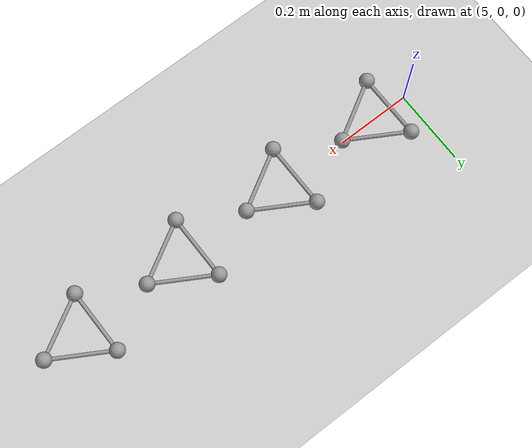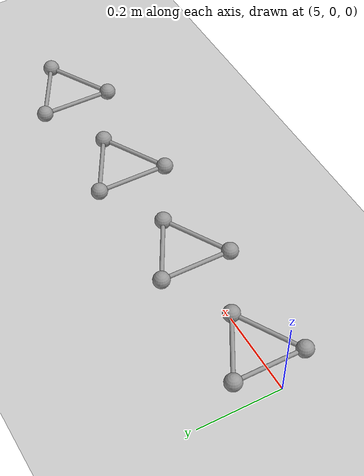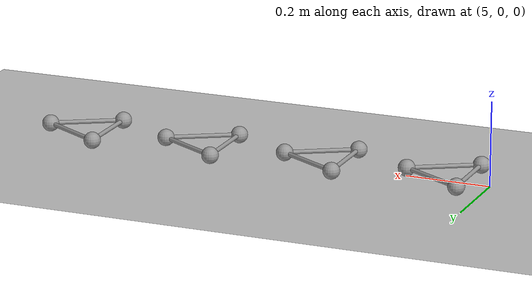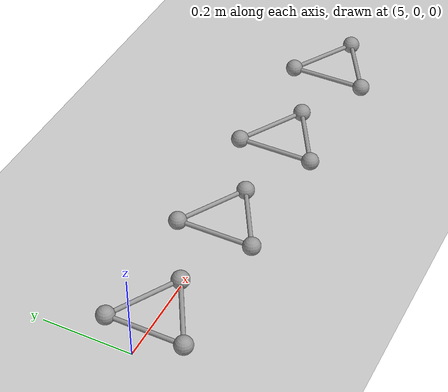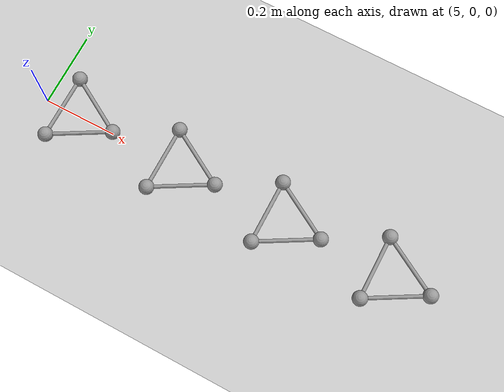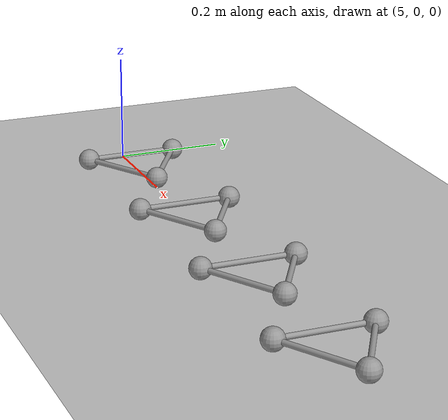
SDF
<sdf version="1.6">
 <world name="default">
  <include><uri>model://ground_plane</uri></include>
  <include><uri>model://sun</uri></include>
  <model name="triball_17">
   <pose>5.1 0 0 0 0 0</pose>
   <link name="link">
    <pose>0 0 0.02 0 0 0</pose>
    <inertial>
     <mass>0.060318578948924034</mass>
     <inertia>
      <ixx>0.000311243867376448</ixx>
      <iyy>0.000311243867376448</iyy>
      <izz>0.0006128367621210681</izz>
      <ixy>0.0</ixy>
      <ixz>0.0</ixz>
      <iyz>0.0</iyz>
     </inertia>
    </inertial>
    <sensor name="imu" type="imu"><always_on>true</always_on></sensor>
    <collision name="collision_a">
     <pose>0.09999999999999999 0 0  0 0 0</pose>
     <geometry><sphere><radius>0.02</radius></sphere></geometry>
     <surface><friction><ode><mu>0.9</mu><mu2>0.9</mu2><fdir1>1 0 0</fdir1></ode></friction></surface>
    </collision>
    <visual name="visual_a">
     <pose>0.09999999999999999 0 0  0 0 0</pose>
     <geometry><sphere><radius>0.02</radius></sphere></geometry>
     <material>
      <script><uri>file://media/materials/scripts/gazebo.material</uri><name>Gazebo/Grey</name></script>
     </material>
    </visual>
    <collision name="collision_a_to_b">
     <pose>0.024999999999999998 0.04330127018922193 0.0  -1.5707962969925737 -1.0471975511965974 1.047197525387029</pose>
     <geometry><cylinder><radius>0.005</radius><length>0.17320508075688773</length></cylinder></geometry>
     <surface><friction><ode><mu>0.9</mu><mu2>0.9</mu2></ode></friction></surface>
    </collision>
    <visual name="visual_a_to_b">
     <pose>0.024999999999999998 0.04330127018922193 0.0  -1.5707962969925737 -1.0471975511965974 1.047197525387029</pose>
     <geometry><cylinder><radius>0.005</radius><length>0.17320508075688773</length></cylinder></geometry>
     <material>
      <script><uri>file://media/materials/scripts/gazebo.material</uri><name>Gazebo/Grey</name></script>
     </material>
    </visual>
    <collision name="collision_a_to_c">
     <pose>0.024999999999999998 -0.04330127018922193 0.0  1.5707962969925737 -1.0471975511965974 -1.047197525387029</pose>
     <geometry><cylinder><radius>0.005</radius><length>0.17320508075688773</length></cylinder></geometry>
     <surface><friction><ode><mu>0.9</mu><mu2>0.9</mu2></ode></friction></surface>
    </collision>
    <visual name="visual_a_to_c">
     <pose>0.024999999999999998 -0.04330127018922193 0.0  1.5707962969925737 -1.0471975511965974 -1.047197525387029</pose>
     <geometry><cylinder><radius>0.005</radius><length>0.17320508075688773</length></cylinder></geometry>
     <material>
      <script><uri>file://media/materials/scripts/gazebo.material</uri><name>Gazebo/Grey</name></script>
     </material>
    </visual>
    <collision name="collision_b">
     <pose>-0.049999999999999996 0.08660254037844387 0  0 0 0</pose>
     <geometry><sphere><radius>0.02</radius></sphere></geometry>
     <surface><friction><ode><mu>0.9</mu><mu2>0.9</mu2><fdir1>1 0 0</fdir1></ode></friction></surface>
    </collision>
    <visual name="visual_b">
     <pose>-0.049999999999999996 0.08660254037844387 0  0 0 0</pose>
     <geometry><sphere><radius>0.02</radius></sphere></geometry>
     <material>
      <script><uri>file://media/materials/scripts/gazebo.material</uri><name>Gazebo/Grey</name></script>
     </material>
    </visual>
    <collision name="collision_b_to_c">
     <pose>-0.049999999999999996 0.0 0.0  1.5707963267948963 -0.0 0.0</pose>
     <geometry><cylinder><radius>0.005</radius><length>0.17320508075688773</length></cylinder></geometry>
     <surface><friction><ode><mu>0.9</mu><mu2>0.9</mu2></ode></friction></surface>
    </collision>
    <visual name="visual_b_to_c">
     <pose>-0.049999999999999996 0.0 0.0  1.5707963267948963 -0.0 0.0</pose>
     <geometry><cylinder><radius>0.005</radius><length>0.17320508075688773</length></cylinder></geometry>
     <material>
      <script><uri>file://media/materials/scripts/gazebo.material</uri><name>Gazebo/Grey</name></script>
     </material>
    </visual>
    <collision name="collision_c">
     <pose>-0.049999999999999996 -0.08660254037844387 0  0 0 0</pose>
     <geometry><sphere><radius>0.02</radius></sphere></geometry>
     <surface><friction><ode><mu>0.9</mu><mu2>0.9</mu2><fdir1>1 0 0</fdir1></ode></friction></surface>
    </collision>
    <visual name="visual_c">
     <pose>-0.049999999999999996 -0.08660254037844387 0  0 0 0</pose>
     <geometry><sphere><radius>0.02</radius></sphere></geometry>
     <material>
      <script><uri>file://media/materials/scripts/gazebo.material</uri><name>Gazebo/Grey</name></script>
     </material>
    </visual>
   </link>
   <plugin name="triball_17" filename="libInitialVelocityPlugin.so">
    <linear>0 15 0</linear>
    <angular>0 0 9.375</angular>
   </plugin>
  </model>
  <model name="triball_18">
   <pose>5.3999999999999995 0 0 0 0 0</pose>
   <link name="link">
    <pose>0 0 0.02 0 0 0</pose>
    <inertial>
     <mass>0.060318578948924034</mass>
     <inertia>
      <ixx>0.000311243867376448</ixx>
      <iyy>0.000311243867376448</iyy>
      <izz>0.0006128367621210681</izz>
      <ixy>0.0</ixy>
      <ixz>0.0</ixz>
      <iyz>0.0</iyz>
     </inertia>
    </inertial>
    <sensor name="imu" type="imu"><always_on>true</always_on></sensor>
    <collision name="collision_a">
     <pose>0.09999999999999999 0 0  0 0 0</pose>
     <geometry><sphere><radius>0.02</radius></sphere></geometry>
     <surface><friction><ode><mu>0.9</mu><mu2>0.9</mu2><fdir1>1 0 0</fdir1></ode></friction></surface>
    </collision>
    <visual name="visual_a">
     <pose>0.09999999999999999 0 0  0 0 0</pose>
     <geometry><sphere><radius>0.02</radius></sphere></geometry>
     <material>
      <script><uri>file://media/materials/scripts/gazebo.material</uri><name>Gazebo/Grey</name></script>
     </material>
    </visual>
    <collision name="collision_a_to_b">
     <pose>0.024999999999999998 0.04330127018922193 0.0  -1.5707962969925737 -1.0471975511965974 1.047197525387029</pose>
     <geometry><cylinder><radius>0.005</radius><length>0.17320508075688773</length></cylinder></geometry>
     <surface><friction><ode><mu>0.9</mu><mu2>0.9</mu2></ode></friction></surface>
    </collision>
    <visual name="visual_a_to_b">
     <pose>0.024999999999999998 0.04330127018922193 0.0  -1.5707962969925737 -1.0471975511965974 1.047197525387029</pose>
     <geometry><cylinder><radius>0.005</radius><length>0.17320508075688773</length></cylinder></geometry>
     <material>
      <script><uri>file://media/materials/scripts/gazebo.material</uri><name>Gazebo/Grey</name></script>
     </material>
    </visual>
    <collision name="collision_a_to_c">
     <pose>0.024999999999999998 -0.04330127018922193 0.0  1.5707962969925737 -1.0471975511965974 -1.047197525387029</pose>
     <geometry><cylinder><radius>0.005</radius><length>0.17320508075688773</length></cylinder></geometry>
     <surface><friction><ode><mu>0.9</mu><mu2>0.9</mu2></ode></friction></surface>
    </collision>
    <visual name="visual_a_to_c">
     <pose>0.024999999999999998 -0.04330127018922193 0.0  1.5707962969925737 -1.0471975511965974 -1.047197525387029</pose>
     <geometry><cylinder><radius>0.005</radius><length>0.17320508075688773</length></cylinder></geometry>
     <material>
      <script><uri>file://media/materials/scripts/gazebo.material</uri><name>Gazebo/Grey</name></script>
     </material>
    </visual>
    <collision name="collision_b">
     <pose>-0.049999999999999996 0.08660254037844387 0  0 0 0</pose>
     <geometry><sphere><radius>0.02</radius></sphere></geometry>
     <surface><friction><ode><mu>0.9</mu><mu2>0.9</mu2><fdir1>1 0 0</fdir1></ode></friction></surface>
    </collision>
    <visual name="visual_b">
     <pose>-0.049999999999999996 0.08660254037844387 0  0 0 0</pose>
     <geometry><sphere><radius>0.02</radius></sphere></geometry>
     <material>
      <script><uri>file://media/materials/scripts/gazebo.material</uri><name>Gazebo/Grey</name></script>
     </material>
    </visual>
    <collision name="collision_b_to_c">
     <pose>-0.049999999999999996 0.0 0.0  1.5707963267948963 -0.0 0.0</pose>
     <geometry><cylinder><radius>0.005</radius><length>0.17320508075688773</length></cylinder></geometry>
     <surface><friction><ode><mu>0.9</mu><mu2>0.9</mu2></ode></friction></surface>
    </collision>
    <visual name="visual_b_to_c">
     <pose>-0.049999999999999996 0.0 0.0  1.5707963267948963 -0.0 0.0</pose>
     <geometry><cylinder><radius>0.005</radius><length>0.17320508075688773</length></cylinder></geometry>
     <material>
      <script><uri>file://media/materials/scripts/gazebo.material</uri><name>Gazebo/Grey</name></script>
     </material>
    </visual>
    <collision name="collision_c">
     <pose>-0.049999999999999996 -0.08660254037844387 0  0 0 0</pose>
     <geometry><sphere><radius>0.02</radius></sphere></geometry>
     <surface><friction><ode><mu>0.9</mu><mu2>0.9</mu2><fdir1>1 0 0</fdir1></ode></friction></surface>
    </collision>
    <visual name="visual_c">
     <pose>-0.049999999999999996 -0.08660254037844387 0  0 0 0</pose>
     <geometry><sphere><radius>0.02</radius></sphere></geometry>
     <material>
      <script><uri>file://media/materials/scripts/gazebo.material</uri><name>Gazebo/Grey</name></script>
     </material>
    </visual>
   </link>
   <plugin name="triball_18" filename="libInitialVelocityPlugin.so">
    <linear>0 15 0</linear>
    <angular>0 0 18.75</angular>
   </plugin>
  </model>
  <model name="triball_19">
   <pose>5.7 0 0 0 0 0</pose>
   <link name="link">
    <pose>0 0 0.02 0 0 0</pose>
    <inertial>
     <mass>0.060318578948924034</mass>
     <inertia>
      <ixx>0.000311243867376448</ixx>
      <iyy>0.000311243867376448</iyy>
      <izz>0.0006128367621210681</izz>
      <ixy>0.0</ixy>
      <ixz>0.0</ixz>
      <iyz>0.0</iyz>
     </inertia>
    </inertial>
    <sensor name="imu" type="imu"><always_on>true</always_on></sensor>
    <collision name="collision_a">
     <pose>0.09999999999999999 0 0  0 0 0</pose>
     <geometry><sphere><radius>0.02</radius></sphere></geometry>
     <surface><friction><ode><mu>0.9</mu><mu2>0.9</mu2><fdir1>1 0 0</fdir1></ode></friction></surface>
    </collision>
    <visual name="visual_a">
     <pose>0.09999999999999999 0 0  0 0 0</pose>
     <geometry><sphere><radius>0.02</radius></sphere></geometry>
     <material>
      <script><uri>file://media/materials/scripts/gazebo.material</uri><name>Gazebo/Grey</name></script>
     </material>
    </visual>
    <collision name="collision_a_to_b">
     <pose>0.024999999999999998 0.04330127018922193 0.0  -1.5707962969925737 -1.0471975511965974 1.047197525387029</pose>
     <geometry><cylinder><radius>0.005</radius><length>0.17320508075688773</length></cylinder></geometry>
     <surface><friction><ode><mu>0.9</mu><mu2>0.9</mu2></ode></friction></surface>
    </collision>
    <visual name="visual_a_to_b">
     <pose>0.024999999999999998 0.04330127018922193 0.0  -1.5707962969925737 -1.0471975511965974 1.047197525387029</pose>
     <geometry><cylinder><radius>0.005</radius><length>0.17320508075688773</length></cylinder></geometry>
     <material>
      <script><uri>file://media/materials/scripts/gazebo.material</uri><name>Gazebo/Grey</name></script>
     </material>
    </visual>
    <collision name="collision_a_to_c">
     <pose>0.024999999999999998 -0.04330127018922193 0.0  1.5707962969925737 -1.0471975511965974 -1.047197525387029</pose>
     <geometry><cylinder><radius>0.005</radius><length>0.17320508075688773</length></cylinder></geometry>
     <surface><friction><ode><mu>0.9</mu><mu2>0.9</mu2></ode></friction></surface>
    </collision>
    <visual name="visual_a_to_c">
     <pose>0.024999999999999998 -0.04330127018922193 0.0  1.5707962969925737 -1.0471975511965974 -1.047197525387029</pose>
     <geometry><cylinder><radius>0.005</radius><length>0.17320508075688773</length></cylinder></geometry>
     <material>
      <script><uri>file://media/materials/scripts/gazebo.material</uri><name>Gazebo/Grey</name></script>
     </material>
    </visual>
    <collision name="collision_b">
     <pose>-0.049999999999999996 0.08660254037844387 0  0 0 0</pose>
     <geometry><sphere><radius>0.02</radius></sphere></geometry>
     <surface><friction><ode><mu>0.9</mu><mu2>0.9</mu2><fdir1>1 0 0</fdir1></ode></friction></surface>
    </collision>
    <visual name="visual_b">
     <pose>-0.049999999999999996 0.08660254037844387 0  0 0 0</pose>
     <geometry><sphere><radius>0.02</radius></sphere></geometry>
     <material>
      <script><uri>file://media/materials/scripts/gazebo.material</uri><name>Gazebo/Grey</name></script>
     </material>
    </visual>
    <collision name="collision_b_to_c">
     <pose>-0.049999999999999996 0.0 0.0  1.5707963267948963 -0.0 0.0</pose>
     <geometry><cylinder><radius>0.005</radius><length>0.17320508075688773</length></cylinder></geometry>
     <surface><friction><ode><mu>0.9</mu><mu2>0.9</mu2></ode></friction></surface>
    </collision>
    <visual name="visual_b_to_c">
     <pose>-0.049999999999999996 0.0 0.0  1.5707963267948963 -0.0 0.0</pose>
     <geometry><cylinder><radius>0.005</radius><length>0.17320508075688773</length></cylinder></geometry>
     <material>
      <script><uri>file://media/materials/scripts/gazebo.material</uri><name>Gazebo/Grey</name></script>
     </material>
    </visual>
    <collision name="collision_c">
     <pose>-0.049999999999999996 -0.08660254037844387 0  0 0 0</pose>
     <geometry><sphere><radius>0.02</radius></sphere></geometry>
     <surface><friction><ode><mu>0.9</mu><mu2>0.9</mu2><fdir1>1 0 0</fdir1></ode></friction></surface>
    </collision>
    <visual name="visual_c">
     <pose>-0.049999999999999996 -0.08660254037844387 0  0 0 0</pose>
     <geometry><sphere><radius>0.02</radius></sphere></geometry>
     <material>
      <script><uri>file://media/materials/scripts/gazebo.material</uri><name>Gazebo/Grey</name></script>
     </material>
    </visual>
   </link>
   <plugin name="triball_19" filename="libInitialVelocityPlugin.so">
    <linear>0 15 0</linear>
    <angular>0 0 28.125</angular>
   </plugin>
  </model>
  <model name="triball_20">
   <pose>6.0 0 0 0 0 0</pose>
   <link name="link">
    <pose>0 0 0.02 0 0 0</pose>
    <inertial>
     <mass>0.060318578948924034</mass>
     <inertia>
      <ixx>0.000311243867376448</ixx>
      <iyy>0.000311243867376448</iyy>
      <izz>0.0006128367621210681</izz>
      <ixy>0.0</ixy>
      <ixz>0.0</ixz>
      <iyz>0.0</iyz>
     </inertia>
    </inertial>
    <sensor name="imu" type="imu"><always_on>true</always_on></sensor>
    <collision name="collision_a">
     <pose>0.09999999999999999 0 0  0 0 0</pose>
     <geometry><sphere><radius>0.02</radius></sphere></geometry>
     <surface><friction><ode><mu>0.9</mu><mu2>0.9</mu2><fdir1>1 0 0</fdir1></ode></friction></surface>
    </collision>
    <visual name="visual_a">
     <pose>0.09999999999999999 0 0  0 0 0</pose>
     <geometry><sphere><radius>0.02</radius></sphere></geometry>
     <material>
      <script><uri>file://media/materials/scripts/gazebo.material</uri><name>Gazebo/Grey</name></script>
     </material>
    </visual>
    <collision name="collision_a_to_b">
     <pose>0.024999999999999998 0.04330127018922193 0.0  -1.5707962969925737 -1.0471975511965974 1.047197525387029</pose>
     <geometry><cylinder><radius>0.005</radius><length>0.17320508075688773</length></cylinder></geometry>
     <surface><friction><ode><mu>0.9</mu><mu2>0.9</mu2></ode></friction></surface>
    </collision>
    <visual name="visual_a_to_b">
     <pose>0.024999999999999998 0.04330127018922193 0.0  -1.5707962969925737 -1.0471975511965974 1.047197525387029</pose>
     <geometry><cylinder><radius>0.005</radius><length>0.17320508075688773</length></cylinder></geometry>
     <material>
      <script><uri>file://media/materials/scripts/gazebo.material</uri><name>Gazebo/Grey</name></script>
     </material>
    </visual>
    <collision name="collision_a_to_c">
     <pose>0.024999999999999998 -0.04330127018922193 0.0  1.5707962969925737 -1.0471975511965974 -1.047197525387029</pose>
     <geometry><cylinder><radius>0.005</radius><length>0.17320508075688773</length></cylinder></geometry>
     <surface><friction><ode><mu>0.9</mu><mu2>0.9</mu2></ode></friction></surface>
    </collision>
    <visual name="visual_a_to_c">
     <pose>0.024999999999999998 -0.04330127018922193 0.0  1.5707962969925737 -1.0471975511965974 -1.047197525387029</pose>
     <geometry><cylinder><radius>0.005</radius><length>0.17320508075688773</length></cylinder></geometry>
     <material>
      <script><uri>file://media/materials/scripts/gazebo.material</uri><name>Gazebo/Grey</name></script>
     </material>
    </visual>
    <collision name="collision_b">
     <pose>-0.049999999999999996 0.08660254037844387 0  0 0 0</pose>
     <geometry><sphere><radius>0.02</radius></sphere></geometry>
     <surface><friction><ode><mu>0.9</mu><mu2>0.9</mu2><fdir1>1 0 0</fdir1></ode></friction></surface>
    </collision>
    <visual name="visual_b">
     <pose>-0.049999999999999996 0.08660254037844387 0  0 0 0</pose>
     <geometry><sphere><radius>0.02</radius></sphere></geometry>
     <material>
      <script><uri>file://media/materials/scripts/gazebo.material</uri><name>Gazebo/Grey</name></script>
     </material>
    </visual>
    <collision name="collision_b_to_c">
     <pose>-0.049999999999999996 0.0 0.0  1.5707963267948963 -0.0 0.0</pose>
     <geometry><cylinder><radius>0.005</radius><length>0.17320508075688773</length></cylinder></geometry>
     <surface><friction><ode><mu>0.9</mu><mu2>0.9</mu2></ode></friction></surface>
    </collision>
    <visual name="visual_b_to_c">
     <pose>-0.049999999999999996 0.0 0.0  1.5707963267948963 -0.0 0.0</pose>
     <geometry><cylinder><radius>0.005</radius><length>0.17320508075688773</length></cylinder></geometry>
     <material>
      <script><uri>file://media/materials/scripts/gazebo.material</uri><name>Gazebo/Grey</name></script>
     </material>
    </visual>
    <collision name="collision_c">
     <pose>-0.049999999999999996 -0.08660254037844387 0  0 0 0</pose>
     <geometry><sphere><radius>0.02</radius></sphere></geometry>
     <surface><friction><ode><mu>0.9</mu><mu2>0.9</mu2><fdir1>1 0 0</fdir1></ode></friction></surface>
    </collision>
    <visual name="visual_c">
     <pose>-0.049999999999999996 -0.08660254037844387 0  0 0 0</pose>
     <geometry><sphere><radius>0.02</radius></sphere></geometry>
     <material>
      <script><uri>file://media/materials/scripts/gazebo.material</uri><name>Gazebo/Grey</name></script>
     </material>
    </visual>
   </link>
   <plugin name="triball_20" filename="libInitialVelocityPlugin.so">
    <linear>0 15 0</linear>
    <angular>0 0 37.5</angular>
   </plugin>
  </model>
 </world>
</sdf>
